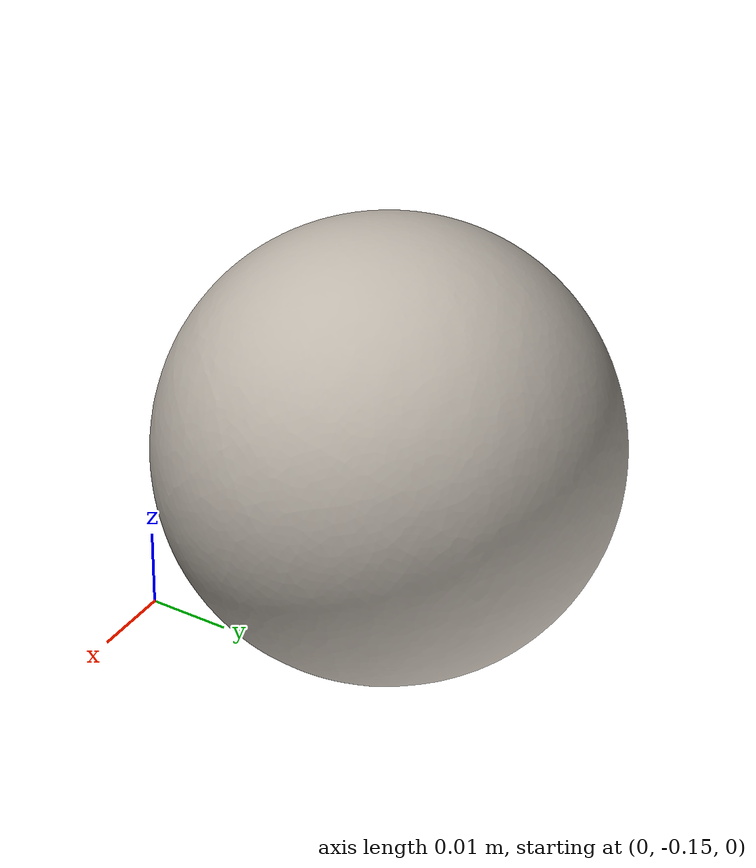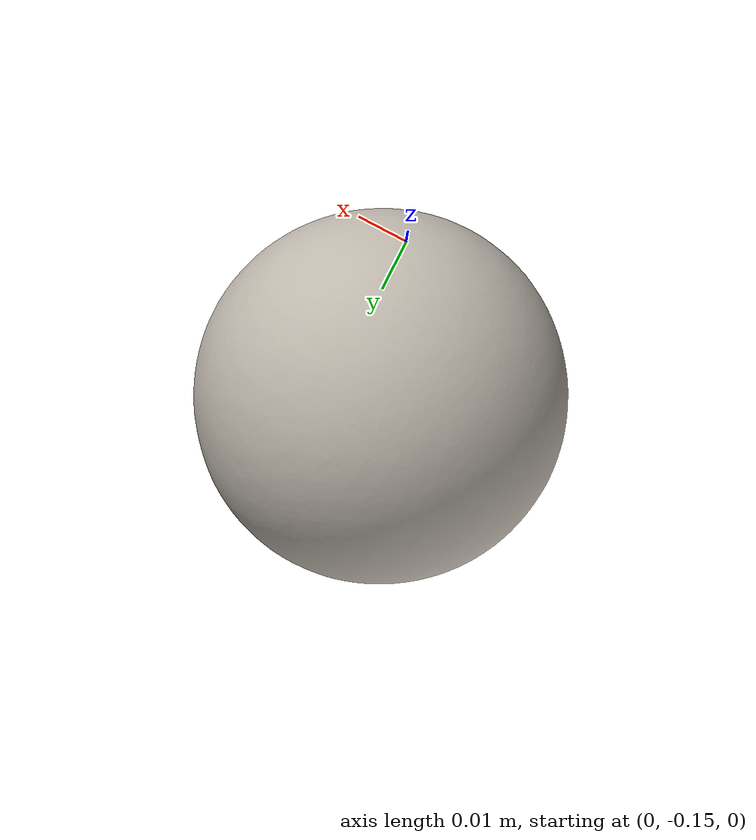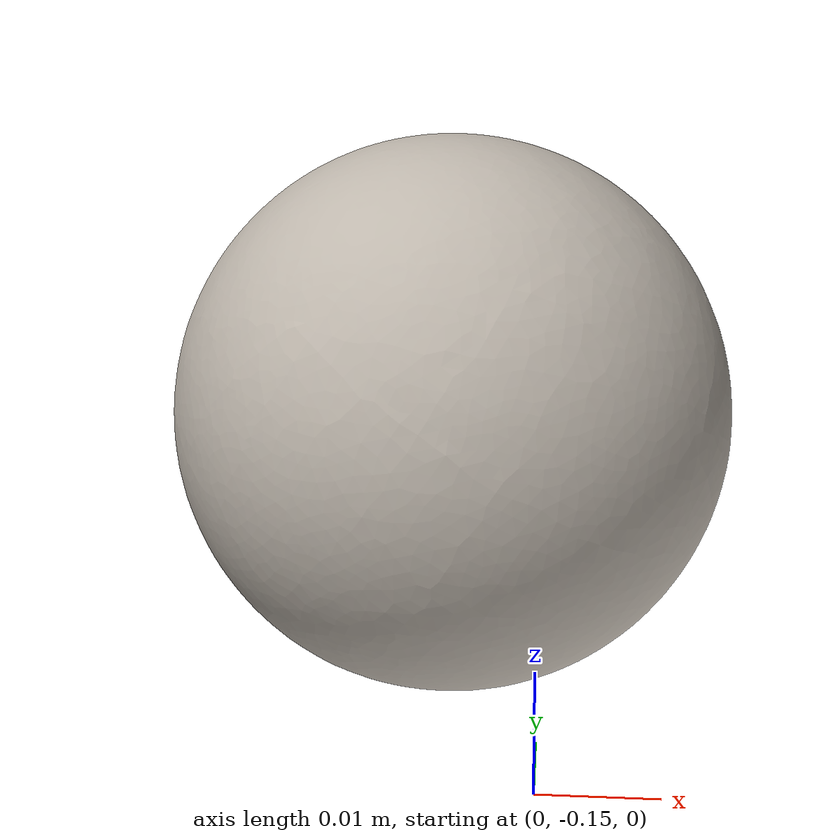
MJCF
<mujoco model="racquetball">
  <compiler angle="radian" meshdir="assets" texturedir="assets"/>
    <default>
        <default class="ycb_col">
            <geom contype="1" conaffinity="1" group="3" rgba=".4 .5 .6 1"/>
        </default>
        <default class="ycb_viz">
            <geom contype="0" conaffinity="0" type="mesh" mass="0"/>
        </default>
    </default>
  <asset>
    <texture type="2d" name="racquetball_tex" file="texture_map.png"/>
    <material name="racquetball_mat" texture="racquetball_tex" specular="0.5" shininess="0.5"/>
    <mesh file="textured.obj" name="racquetball"/>
    <mesh file="textured_collision_0.obj" name="racquetball_collision_0"/>
  </asset>
  <worldbody>
      <geom material="racquetball_mat" mesh="racquetball" class="ycb_viz"/>
      <geom mesh="racquetball_collision_0" class="ycb_col" conaffinity="1" condim="4" friction="0.1 0.1 0.1" mass="0.041" rgba="1 1 1 1" solimp="0.99 0.99 0.01" solref=".001 0.1" type="mesh" group="3"/>
  </worldbody>
</mujoco>
